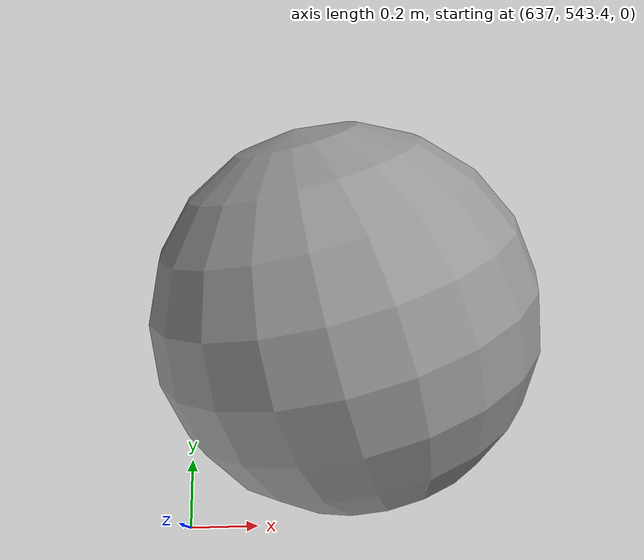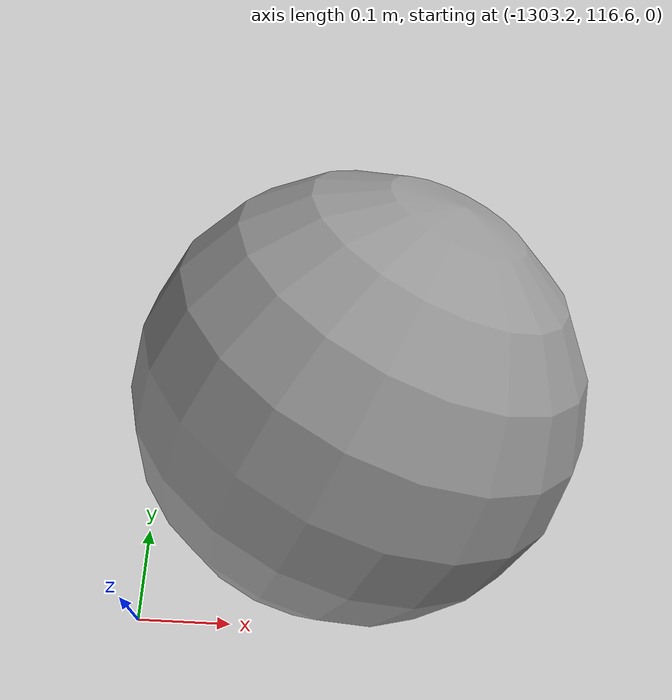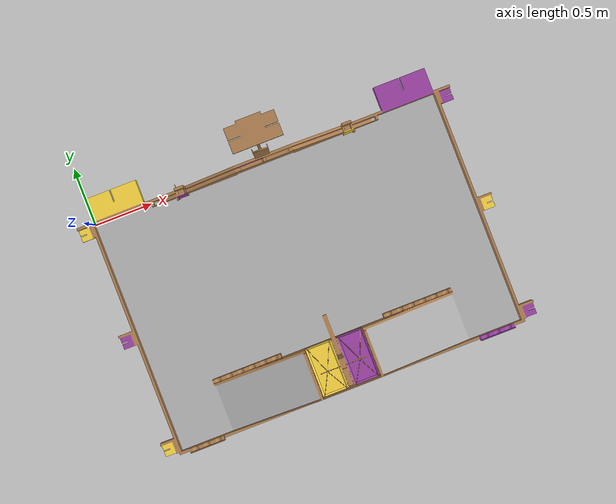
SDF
<sdf version="1.6">
 <world name="default">
  <light name="sun" type="directional">
   <pose>0 0 10 0 -0 0</pose>
   <diffuse>0.8 0.8 0.8 1</diffuse>
   <specular>0.2 0.2 0.2 1</specular>
   <attenuation>
    <range>1000</range>
    <constant>0.9</constant>
    <linear>0.01</linear>
    <quadratic>0.001</quadratic>
   </attenuation>
   <direction>-0.5 0.1 -0.9</direction>
  </light>
  <model name="ground_plane">
   <static>1</static>
   <link name="link">
    <collision name="collision">
     <geometry><plane><normal>0 0 1</normal><size>100 100</size></plane></geometry>
     <surface><friction><ode><mu>100</mu><mu2>50</mu2></ode></friction></surface>
    </collision>
    <visual name="visual">
     <cast_shadows>0</cast_shadows>
     <geometry><plane><normal>0 0 1</normal><size>100 100</size></plane></geometry>
     <material>
      <script><uri>file://media/materials/scripts/gazebo.material</uri><name>Gazebo/Grey</name></script>
     </material>
    </visual>
   </link>
  </model>
  <gravity>0 0 -9.8</gravity>
  <magnetic_field>6e-06 2.3e-05 -4.2e-05</magnetic_field>
  <atmosphere type="adiabatic"/>
  <physics name="default_physics" default="0" type="ode">
   <max_step_size>0.001</max_step_size>
   <real_time_factor>1</real_time_factor>
   <real_time_update_rate>1000</real_time_update_rate>
  </physics>
  <scene><ambient>0.4 0.4 0.4 1</ambient><background>0.7 0.7 0.7 1</background><shadows>1</shadows></scene>
  <spherical_coordinates>
   <surface_model>EARTH_WGS84</surface_model>
   <latitude_deg>0</latitude_deg>
   <longitude_deg>0</longitude_deg>
   <elevation>0</elevation>
   <heading_deg>0</heading_deg>
  </spherical_coordinates>
  <model name="eurobot2019">
   <link name="base_link">
    <inertial>
     <pose>1.5 -0.97131 0.064683 0 -0 0</pose>
     <mass>217.15</mass>
     <inertia>
      <ixx>117.72</ixx>
      <ixy>0.001115</ixy>
      <ixz>8.0681e-05</ixz>
      <iyy>162.37</iyy>
      <iyz>-6.3727</iyz>
      <izz>270.51</izz>
     </inertia>
    </inertial>
    <collision name="base_link_collision">
     <geometry>
      <mesh>
       <scale>1 1 1</scale>
       <uri>/home/rospc/catkin_ws/src/ros_eurobot2019/gazebo/eurobot2019/meshes/base_link1.dae</uri>
      </mesh>
     </geometry>
    </collision>
    <visual name="base_link_visual">
     <geometry>
      <mesh>
       <scale>1 1 1</scale>
       <uri>/home/rospc/catkin_ws/src/ros_eurobot2019/gazebo/eurobot2019/meshes/base_link1.dae</uri>
      </mesh>
     </geometry>
    </visual>
   </link>
   <pose>0.000225 0.002386 -0.0003 -0 1e-05 -0.000136</pose>
  </model>
  <model name="unit_sphere">
   <pose>637.473 543.89 0.5 0.54893 0.831509 2.55127</pose>
   <link name="link">
    <inertial>
     <mass>1</mass>
     <inertia><ixx>0.1</ixx><ixy>0</ixy><ixz>0</ixz><iyy>0.1</iyy><iyz>0</iyz><izz>0.1</izz></inertia>
    </inertial>
    <collision name="collision"><geometry><sphere><radius>0.5</radius></sphere></geometry></collision>
    <visual name="visual">
     <geometry><sphere><radius>0.5</radius></sphere></geometry>
     <material>
      <script><name>Gazebo/Grey</name><uri>file://media/materials/scripts/gazebo.material</uri></script>
     </material>
    </visual>
   </link>
  </model>
  <model name="unit_sphere_1">
   <pose>-1302.97 116.776 0.214922 2.47745 0.233034 -0.381433</pose>
   <link name="link">
    <inertial>
     <mass>1</mass>
     <inertia><ixx>0.1</ixx><ixy>0</ixy><ixz>0</ixz><iyy>0.1</iyy><iyz>0</iyz><izz>0.1</izz></inertia>
    </inertial>
    <collision name="collision"><geometry><sphere><radius>0.214922</radius></sphere></geometry></collision>
    <visual name="visual">
     <geometry><sphere><radius>0.214922</radius></sphere></geometry>
     <material>
      <script><name>Gazebo/Grey</name><uri>file://media/materials/scripts/gazebo.material</uri></script>
     </material>
    </visual>
   </link>
  </model>
  <light name="user_point_light_0" type="point">
   <pose>1.38738 -1.0897 1 0 -0 0</pose>
   <diffuse>0.5 0.5 0.5 1</diffuse>
   <specular>0.1 0.1 0.1 1</specular>
   <attenuation>
    <range>20</range>
    <constant>0.5</constant>
    <linear>0.01</linear>
    <quadratic>0.001</quadratic>
   </attenuation>
   <cast_shadows>0</cast_shadows>
   <direction>0 0 -1</direction>
  </light>
 </world>
</sdf>
